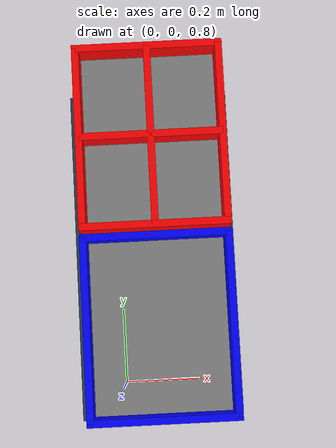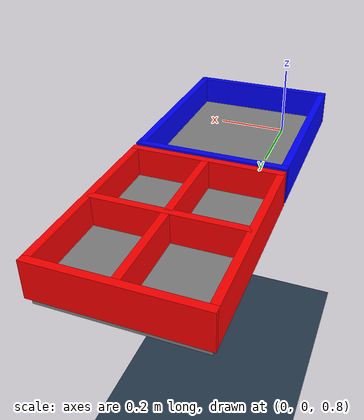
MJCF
<mujoco model="bins_arena">
  <asset>
    <texture builtin="gradient" height="256" rgb1=".9 .9 1." rgb2=".2 .3 .4" type="skybox" width="256"/>
    <texture builtin="checker" height="512" name="texplane" rgb1=".2 .3 .4" rgb2=".1 0.15 0.2" type="2d" width="512"/>
    <texture file="../textures/light-wood.png" type="2d" name="tex-light-wood"/>
    <texture file="../textures/dark-wood.png" type="2d" name="tex-dark-wood"/>
    <material name="light-wood" reflectance="0.5" texrepeat="15 15" texture="tex-light-wood" texuniform="true"/>
    <material name="dark-wood" reflectance="0.5" texrepeat="5 5" texture="tex-dark-wood" texuniform="true"/>
    <material name="floorplane" reflectance="0.5" texrepeat="1 1" texture="texplane" texuniform="true"/>
  </asset>
  <worldbody>
    <geom condim="3" material="floorplane" name="floor" pos="0 0 0" size="3 3 .125" type="plane"/>
    <geom rgba="0 0 0 0" pos="0.1 0.5 0.7" size="0.5 1 .2" type="plane"/>
    <body name="bin1" pos="0.1 0.15 0.8">
      <geom pos="0 0 0" size="0.2 0.25 0.02" type="box" friction="1 0.005 0.0001"/>
      <geom pos="0 0 0" material="light-wood" size="0.2 0.25 0.02" type="box" conaffinity="0" contype="0" group="1"/>
        <geom pos="0 0.25 0.05" size="0.21 0.01 0.05" type="box" friction="1 0.005 0.0001" rgba="0 0 1 1"/>
        <geom pos="0 0.25 0.05" size="0.21 0.01 0.05" type="box" conaffinity="0" contype="0" group="1" material="light-wood"/>

        <geom pos="0 -0.25 0.05" size="0.21 0.01 0.05" type="box" friction="1 0.005 0.0001" rgba="0 0 1 1"/>
        <geom pos="0 -0.25 0.05" size="0.21 0.01 0.05" type="box" conaffinity="0" contype="0" group="1" material="light-wood"/>

        <geom pos="0.2 0 0.05" size="0.01 0.25 0.05" type="box" friction="1 0.005 0.0001" rgba="0 0 1 1"/>
        <geom pos="0.2 0 0.05" size="0.01 0.25 0.05" type="box" conaffinity="0" contype="0" group="1" material="light-wood"/>

        <geom pos="-0.2 0 0.05" size="0.01 0.25 0.05" type="box" friction="1 0.005 0.0001" rgba="0 0 1 1"/>
        <geom pos="-0.2 0 0.05" size="0.01 0.25 0.05" type="box" conaffinity="0" contype="0" group="1" material="light-wood"/>
    </body>
    <body name="bin2" pos="0.1 0.68 0.8">
      <geom pos="0 0 0" size="0.2 0.25 0.02" type="box" friction="1 0.005 0.0001"/>
      <geom pos="0 0 0" size="0.2 0.25 0.02" type="box" conaffinity="0" contype="0" group="1" material="dark-wood"/>
        <geom pos="0 0.25 0.05" size="0.21 0.01 0.05" type="box" friction="1 0.005 0.0001" rgba="1 0 0 1"/>
        <geom pos="0 0.25 0.05" size="0.21 0.01 0.05" type="box" conaffinity="0" contype="0" group="1" material="dark-wood"/>
        <geom pos="0 0 0.05" size="0.2 0.01 0.05" type="box" friction="1 0.005 0.0001" rgba="1 0 0 1"/>
        <geom pos="0 0 0.05" size="0.2 0.01 0.05" type="box" conaffinity="0" contype="0" group="1" material="dark-wood"/>
        <geom pos="0 -0.25 0.05" size="0.21 0.01 0.05" type="box" friction="1 0.005 0.0001" rgba="1 0 0 1"/>
        <geom pos="0 -0.25 0.05" size="0.21 0.01 0.05" type="box" conaffinity="0" contype="0" group="1" material="dark-wood"/>

        <geom pos="0.2 0 0.05" size="0.01 0.25 0.05" type="box" friction="1 0.005 0.0001" rgba="1 0 0 1"/>
        <geom pos="0.2 0 0.05" size="0.01 0.25 0.05" type="box" conaffinity="0" contype="0" group="1" material="dark-wood"/>
        <geom pos="0 0 0.05" size="0.01 0.25 0.05" type="box" friction="1 0.005 0.0001" rgba="1 0 0 1"/>
        <geom pos="0 0 0.05" size="0.01 0.25 0.05" type="box" conaffinity="0" contype="0" group="1" material="dark-wood"/>

        <geom pos="-0.2 0 0.05" size="0.01 0.25 0.05" type="box" friction="1 0.005 0.0001" rgba="1 0 0 1"/>
        <geom pos="-0.2 0 0.05" size="0.01 0.25 0.05" type="box" conaffinity="0" contype="0" group="1" material="dark-wood"/>
    </body>

    <light diffuse=".8 .8 .8" dir="0 -.15 -1" directional="false" pos="1 1 4.0" specular="0.3 0.3 0.3" castshadow="false"/>
    <light diffuse=".8 .8 .8" dir="0 -.15 -1" directional="false" pos="-3. -3. 4.0" specular="0.3 0.3 0.3" castshadow="false"/>
    <!-- frontview -->
    <camera mode="fixed" name="frontview" pos="1.6 0.4 1.45" quat="0.56 0.43 0.43 0.56"/>
    <!-- birdview -->
    <camera mode="fixed" name="birdview" pos="-0.2 0.4 3.0" quat="0.7071 0 0 0.7071"/>
    <!-- tabletop -->
    <camera mode="fixed" name="tabletop" pos="1.0 0.4 1.75" quat="0.653 0.271 0.271 0.653"/>
  </worldbody>
</mujoco>
